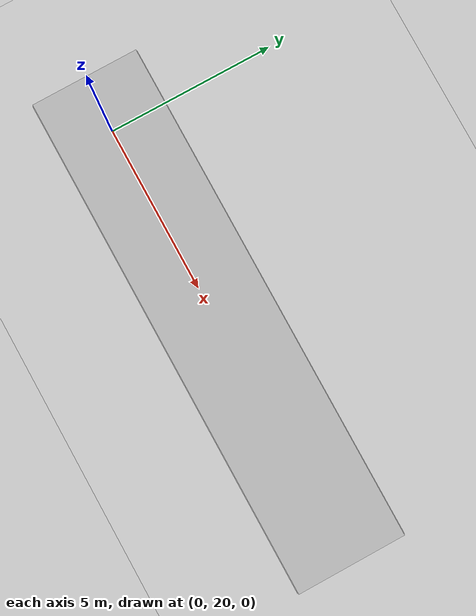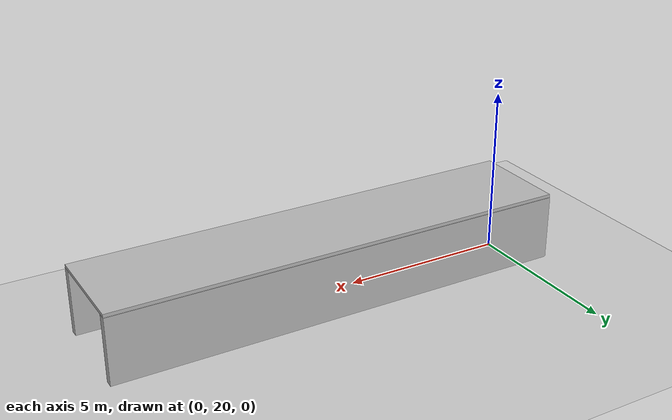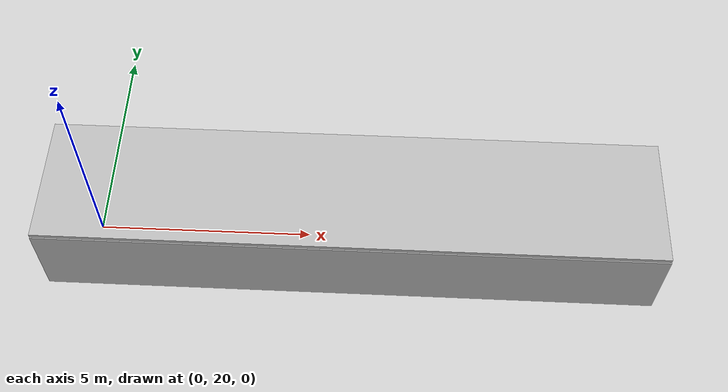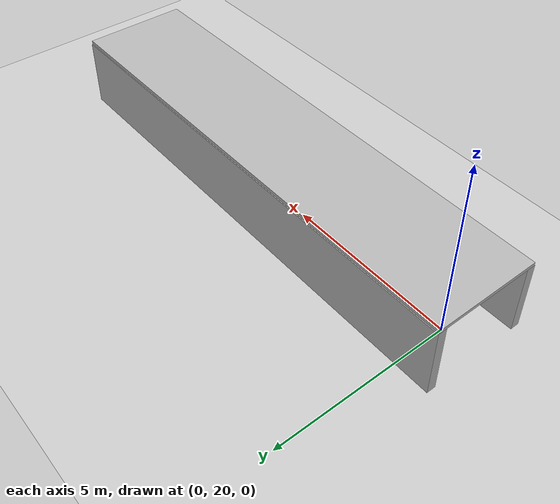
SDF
<?xml version="1.0"?>
<sdf version="1.4">
  <world name="racecar_tunnel">

    <include>
      <uri>model://sun</uri>
    </include>

    <gui>
      <camera name='main'>
        <pose>0 0 10 0 1.571 0</pose>
      </camera>
    </gui>

    <model name="ground_plane">
      <static>true</static>
      <link name="link">
        <collision name="collision">
          <geometry>
            <plane>
              <normal>0 0 1</normal>
              <size>150 150</size>
            </plane>
          </geometry>
          <surface>
            <friction>
              <ode>
                <mu>100</mu>
                <mu2>50</mu2>
              </ode>
            </friction>
          </surface>
        </collision>
        <visual name="visual">
          <cast_shadows>false</cast_shadows>
          <geometry>
            <plane>
              <normal>0 0 1</normal>
              <size>150 150</size>
            </plane>
          </geometry>
          <material>
            <script>
              <uri>file://media/materials/scripts/gazebo.material</uri>
              <name>Gazebo/Grey</name>
            </script>
          </material>
        </visual>
      </link>
    </model>

    <include>
      <uri>model://racecar_description/models/MIT_Tunnel</uri>
      <pose>6 20 0 0 0 0</pose>
    </include>

  </world>
</sdf>

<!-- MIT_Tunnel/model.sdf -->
<sdf version="1.6">
  <model name="MIT_Tunnel">
    <static>true</static>
    <link name="left_wall">
      <pose>0 -1.4 1 0 0 0</pose>
      <collision name="collision"><geometry><box><size>14 0.25 2</size></box></geometry></collision>
      <visual name="visual"><geometry><box><size>14 0.25 2</size></box></geometry></visual>
    </link>
    <link name="right_wall">
      <pose>0 1.4 1 0 0 0</pose>
      <collision name="collision"><geometry><box><size>14 0.25 2</size></box></geometry></collision>
      <visual name="visual"><geometry><box><size>14 0.25 2</size></box></geometry></visual>
    </link>
    <link name="roof">
      <pose>0 0 2.05 0 0 0</pose>
      <collision name="collision"><geometry><box><size>14 3.0 0.1</size></box></geometry></collision>
      <visual name="visual"><geometry><box><size>14 3.0 0.1</size></box></geometry></visual>
    </link>
  </model>
</sdf>
